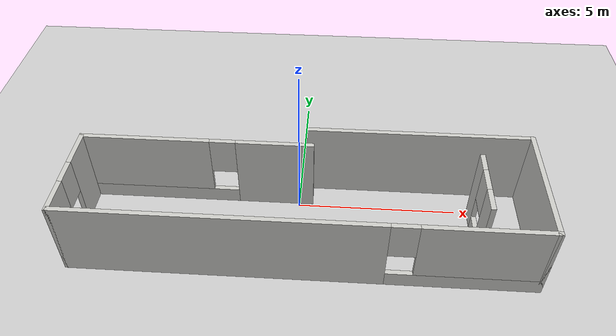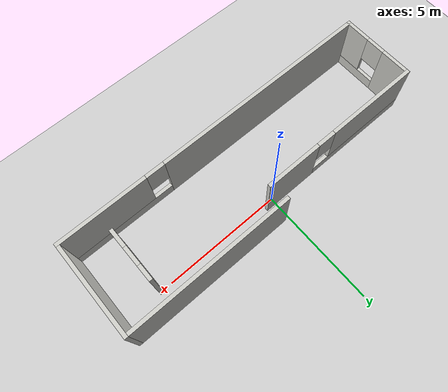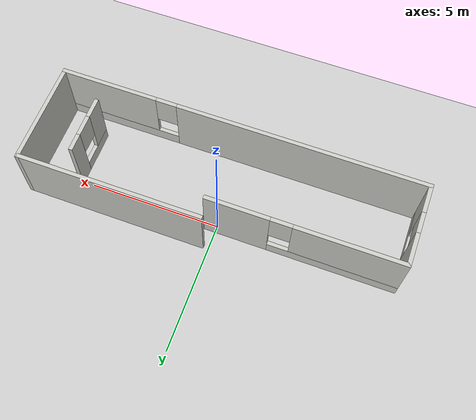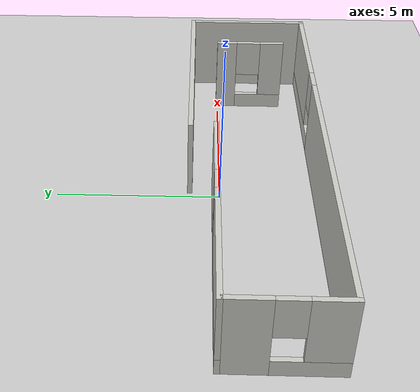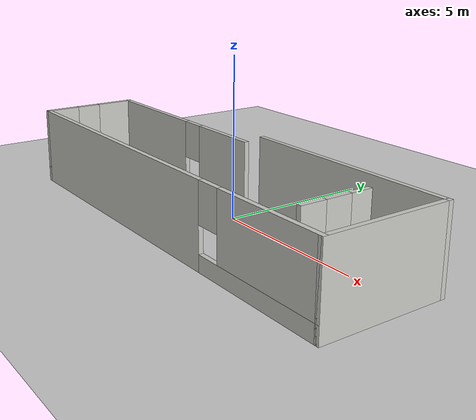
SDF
<sdf version="1.7">
 <world name="default">
  <light name="sun" type="directional">
   <pose>0 0 10 0 -0 0</pose>
   <diffuse>0.8 0.8 0.8 1</diffuse>
   <specular>0.2 0.2 0.2 1</specular>
   <attenuation>
    <range>1000</range>
    <constant>0.9</constant>
    <linear>0.01</linear>
    <quadratic>0.001</quadratic>
   </attenuation>
   <direction>-0.5 0.1 -0.9</direction>
   <spot><inner_angle>0</inner_angle><outer_angle>0</outer_angle><falloff>0</falloff></spot>
  </light>
  <model name="ground_plane">
   <static>1</static>
   <link name="link">
    <collision name="collision">
     <geometry><plane><normal>0 0 1</normal><size>100 100</size></plane></geometry>
     <surface><friction><ode><mu>100</mu><mu2>50</mu2></ode></friction></surface>
    </collision>
    <visual name="visual">
     <cast_shadows>0</cast_shadows>
     <geometry><plane><normal>0 0 1</normal><size>100 100</size></plane></geometry>
     <material>
      <script><uri>file://media/materials/scripts/gazebo.material</uri><name>Gazebo/Grey</name></script>
     </material>
    </visual>
   </link>
  </model>
  <gravity>0 0 -9.8</gravity>
  <magnetic_field>6e-06 2.3e-05 -4.2e-05</magnetic_field>
  <atmosphere type="adiabatic"/>
  <physics type="ode">
   <max_step_size>0.001</max_step_size>
   <real_time_factor>1</real_time_factor>
   <real_time_update_rate>1000</real_time_update_rate>
  </physics>
  <scene><ambient>0.4 0.4 0.4 1</ambient><background>0.7 0.7 0.7 1</background><shadows>1</shadows></scene>
  <spherical_coordinates>
   <surface_model>EARTH_WGS84</surface_model>
   <latitude_deg>0</latitude_deg>
   <longitude_deg>0</longitude_deg>
   <elevation>0</elevation>
   <heading_deg>0</heading_deg>
  </spherical_coordinates>
  <model name="basic1">
   <pose>0.187213 -1.00836 0 0 -0 0</pose>
   <link name="Wall_0">
    <pose>-3.375 1.175 0 0 -0 3.14159</pose>
    <visual name="Wall_0_Visual_0">
     <pose>-2.4225 0 1.25 0 -0 0</pose>
     <geometry><box><size>2.405 0.15 2.5</size></box></geometry>
     <material>
      <script><uri>file://media/materials/scripts/gazebo.material</uri><name>Gazebo/CeilingTiled</name></script>
      <ambient>1 1 1 1</ambient>
     </material>
     <meta><layer>0</layer></meta>
    </visual>
    <collision name="Wall_0_Collision_0">
     <geometry><box><size>2.405 0.15 2.5</size></box></geometry>
     <pose>-2.4225 0 1.25 0 -0 0</pose>
    </collision>
    <visual name="Wall_0_Visual_1">
     <pose>1.2025 0 0.25 0 -0 0</pose>
     <geometry><box><size>4.845 0.15 0.5</size></box></geometry>
     <material>
      <script><uri>file://media/materials/scripts/gazebo.material</uri><name>Gazebo/CeilingTiled</name></script>
      <ambient>1 1 1 1</ambient>
     </material>
     <meta><layer>0</layer></meta>
    </visual>
    <collision name="Wall_0_Collision_1">
     <geometry><box><size>4.845 0.15 0.5</size></box></geometry>
     <pose>1.2025 0 0.25 0 -0 0</pose>
    </collision>
    <visual name="Wall_0_Visual_2">
     <pose>1.6025 0 1.5 0 -0 0</pose>
     <geometry><box><size>4.045 0.15 2</size></box></geometry>
     <material>
      <script><uri>file://media/materials/scripts/gazebo.material</uri><name>Gazebo/CeilingTiled</name></script>
      <ambient>1 1 1 1</ambient>
     </material>
     <meta><layer>0</layer></meta>
    </visual>
    <collision name="Wall_0_Collision_2">
     <geometry><box><size>4.045 0.15 2</size></box></geometry>
     <pose>1.6025 0 1.5 0 -0 0</pose>
    </collision>
    <visual name="Wall_0_Visual_3">
     <pose>-0.82 0 1.9 0 -0 0</pose>
     <geometry><box><size>0.8 0.15 1.2</size></box></geometry>
     <material>
      <script><uri>file://media/materials/scripts/gazebo.material</uri><name>Gazebo/CeilingTiled</name></script>
      <ambient>1 1 1 1</ambient>
     </material>
     <meta><layer>0</layer></meta>
    </visual>
    <collision name="Wall_0_Collision_3">
     <geometry><box><size>0.8 0.15 1.2</size></box></geometry>
     <pose>-0.82 0 1.9 0 -0 0</pose>
    </collision>
   </link>
   <link name="Wall_1">
    <pose>-6.925 -0.375 0 0 -0 -1.5708</pose>
    <visual name="Wall_1_Visual_0">
     <pose>-0.9725 0 1.25 0 -0 0</pose>
     <geometry><box><size>1.305 0.15 2.5</size></box></geometry>
     <material>
      <script><uri>file://media/materials/scripts/gazebo.material</uri><name>Gazebo/CeilingTiled</name></script>
      <ambient>1 1 1 1</ambient>
     </material>
     <meta><layer>0</layer></meta>
    </visual>
    <collision name="Wall_1_Collision_0">
     <geometry><box><size>1.305 0.15 2.5</size></box></geometry>
     <pose>-0.9725 0 1.25 0 -0 0</pose>
    </collision>
    <visual name="Wall_1_Visual_1">
     <pose>0.6525 0 0.25 0 -0 0</pose>
     <geometry><box><size>1.945 0.15 0.5</size></box></geometry>
     <material>
      <script><uri>file://media/materials/scripts/gazebo.material</uri><name>Gazebo/CeilingTiled</name></script>
      <ambient>1 1 1 1</ambient>
     </material>
     <meta><layer>0</layer></meta>
    </visual>
    <collision name="Wall_1_Collision_1">
     <geometry><box><size>1.945 0.15 0.5</size></box></geometry>
     <pose>0.6525 0 0.25 0 -0 0</pose>
    </collision>
    <visual name="Wall_1_Visual_2">
     <pose>1.0525 0 1.5 0 -0 0</pose>
     <geometry><box><size>1.145 0.15 2</size></box></geometry>
     <material>
      <script><uri>file://media/materials/scripts/gazebo.material</uri><name>Gazebo/CeilingTiled</name></script>
      <ambient>1 1 1 1</ambient>
     </material>
     <meta><layer>0</layer></meta>
    </visual>
    <collision name="Wall_1_Collision_2">
     <geometry><box><size>1.145 0.15 2</size></box></geometry>
     <pose>1.0525 0 1.5 0 -0 0</pose>
    </collision>
    <visual name="Wall_1_Visual_3">
     <pose>0.08 0 1.9 0 -0 0</pose>
     <geometry><box><size>0.8 0.15 1.2</size></box></geometry>
     <material>
      <script><uri>file://media/materials/scripts/gazebo.material</uri><name>Gazebo/CeilingTiled</name></script>
      <ambient>1 1 1 1</ambient>
     </material>
     <meta><layer>0</layer></meta>
    </visual>
    <collision name="Wall_1_Collision_3">
     <geometry><box><size>0.8 0.15 1.2</size></box></geometry>
     <pose>0.08 0 1.9 0 -0 0</pose>
    </collision>
   </link>
   <link name="Wall_2">
    <pose>0 -1.925 0 0 -0 0</pose>
    <visual name="Wall_2_Visual_0">
     <pose>-2.2675 0 1.25 0 -0 0</pose>
     <geometry><box><size>9.465 0.15 2.5</size></box></geometry>
     <material>
      <script><uri>file://media/materials/scripts/gazebo.material</uri><name>Gazebo/CeilingTiled</name></script>
      <ambient>1 1 1 1</ambient>
     </material>
     <meta><layer>0</layer></meta>
    </visual>
    <collision name="Wall_2_Collision_0">
     <geometry><box><size>9.465 0.15 2.5</size></box></geometry>
     <pose>-2.2675 0 1.25 0 -0 0</pose>
    </collision>
    <visual name="Wall_2_Visual_1">
     <pose>4.7325 0 0.25 0 -0 0</pose>
     <geometry><box><size>4.535 0.15 0.5</size></box></geometry>
     <material>
      <script><uri>file://media/materials/scripts/gazebo.material</uri><name>Gazebo/CeilingTiled</name></script>
      <ambient>1 1 1 1</ambient>
     </material>
     <meta><layer>0</layer></meta>
    </visual>
    <collision name="Wall_2_Collision_1">
     <geometry><box><size>4.535 0.15 0.5</size></box></geometry>
     <pose>4.7325 0 0.25 0 -0 0</pose>
    </collision>
    <visual name="Wall_2_Visual_2">
     <pose>5.1325 0 1.5 0 -0 0</pose>
     <geometry><box><size>3.735 0.15 2</size></box></geometry>
     <material>
      <script><uri>file://media/materials/scripts/gazebo.material</uri><name>Gazebo/CeilingTiled</name></script>
      <ambient>1 1 1 1</ambient>
     </material>
     <meta><layer>0</layer></meta>
    </visual>
    <collision name="Wall_2_Collision_2">
     <geometry><box><size>3.735 0.15 2</size></box></geometry>
     <pose>5.1325 0 1.5 0 -0 0</pose>
    </collision>
    <visual name="Wall_2_Visual_3">
     <pose>2.865 0 1.9 0 -0 0</pose>
     <geometry><box><size>0.8 0.15 1.2</size></box></geometry>
     <material>
      <script><uri>file://media/materials/scripts/gazebo.material</uri><name>Gazebo/CeilingTiled</name></script>
      <ambient>1 1 1 1</ambient>
     </material>
     <meta><layer>0</layer></meta>
    </visual>
    <collision name="Wall_2_Collision_3">
     <geometry><box><size>0.8 0.15 1.2</size></box></geometry>
     <pose>2.865 0 1.9 0 -0 0</pose>
    </collision>
   </link>
   <link name="Wall_3">
    <collision name="Wall_3_Collision">
     <geometry><box><size>4 0.15 2.5</size></box></geometry>
     <pose>0 0 1.25 0 -0 0</pose>
    </collision>
    <visual name="Wall_3_Visual">
     <pose>0 0 1.25 0 -0 0</pose>
     <geometry><box><size>4 0.15 2.5</size></box></geometry>
     <material>
      <script><uri>file://media/materials/scripts/gazebo.material</uri><name>Gazebo/CeilingTiled</name></script>
      <ambient>1 1 1 1</ambient>
     </material>
     <meta><layer>0</layer></meta>
    </visual>
    <pose>6.925 0 0 0 -0 1.5708</pose>
   </link>
   <link name="Wall_4">
    <collision name="Wall_4_Collision">
     <geometry><box><size>7 0.15 2.5</size></box></geometry>
     <pose>0 0 1.25 0 -0 0</pose>
    </collision>
    <visual name="Wall_4_Visual">
     <pose>0 0 1.25 0 -0 0</pose>
     <geometry><box><size>7 0.15 2.5</size></box></geometry>
     <material>
      <script><uri>file://media/materials/scripts/gazebo.material</uri><name>Gazebo/CeilingTiled</name></script>
      <ambient>1 1 1 1</ambient>
     </material>
     <meta><layer>0</layer></meta>
    </visual>
    <pose>3.5 1.925 0 0 -0 3.14159</pose>
   </link>
   <link name="Wall_6">
    <pose>5.285 -0.045 0 0 -0 -1.5708</pose>
    <visual name="Wall_6_Visual_0">
     <pose>-0.7925 0 1.25 0 -0 0</pose>
     <geometry><box><size>0.665 0.15 2.5</size></box></geometry>
     <material>
      <script><uri>file://media/materials/scripts/gazebo.material</uri><name>Gazebo/CeilingTiled</name></script>
      <ambient>1 1 1 1</ambient>
     </material>
     <meta><layer>0</layer></meta>
    </visual>
    <collision name="Wall_6_Collision_0">
     <geometry><box><size>0.665 0.15 2.5</size></box></geometry>
     <pose>-0.7925 0 1.25 0 -0 0</pose>
    </collision>
    <visual name="Wall_6_Visual_1">
     <pose>0.3325 0 0.25 0 -0 0</pose>
     <geometry><box><size>1.585 0.15 0.5</size></box></geometry>
     <material>
      <script><uri>file://media/materials/scripts/gazebo.material</uri><name>Gazebo/CeilingTiled</name></script>
      <ambient>1 1 1 1</ambient>
     </material>
     <meta><layer>0</layer></meta>
    </visual>
    <collision name="Wall_6_Collision_1">
     <geometry><box><size>1.585 0.15 0.5</size></box></geometry>
     <pose>0.3325 0 0.25 0 -0 0</pose>
    </collision>
    <visual name="Wall_6_Visual_2">
     <pose>0.7325 0 1.5 0 -0 0</pose>
     <geometry><box><size>0.785 0.15 2</size></box></geometry>
     <material>
      <script><uri>file://media/materials/scripts/gazebo.material</uri><name>Gazebo/CeilingTiled</name></script>
      <ambient>1 1 1 1</ambient>
     </material>
     <meta><layer>0</layer></meta>
    </visual>
    <collision name="Wall_6_Collision_2">
     <geometry><box><size>0.785 0.15 2</size></box></geometry>
     <pose>0.7325 0 1.5 0 -0 0</pose>
    </collision>
    <visual name="Wall_6_Visual_3">
     <pose>-0.06 0 1.9 0 -0 0</pose>
     <geometry><box><size>0.8 0.15 1.2</size></box></geometry>
     <material>
      <script><uri>file://media/materials/scripts/gazebo.material</uri><name>Gazebo/CeilingTiled</name></script>
      <ambient>1 1 1 1</ambient>
     </material>
     <meta><layer>0</layer></meta>
    </visual>
    <collision name="Wall_6_Collision_3">
     <geometry><box><size>0.8 0.15 1.2</size></box></geometry>
     <pose>-0.06 0 1.9 0 -0 0</pose>
    </collision>
   </link>
   <static>1</static>
  </model>
 </world>
</sdf>
